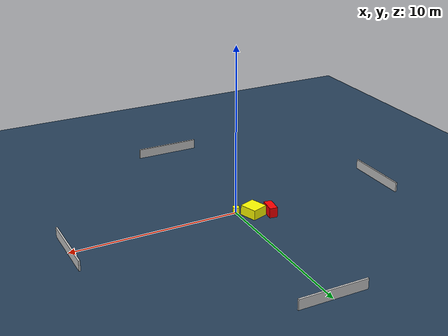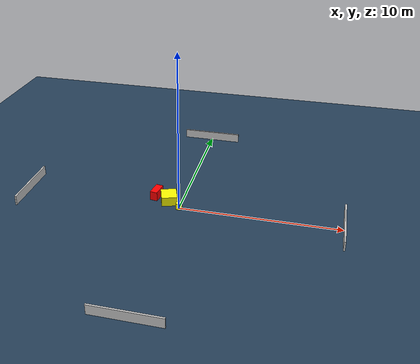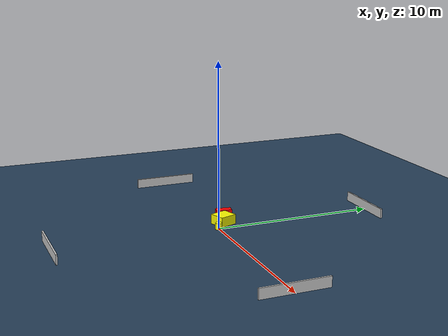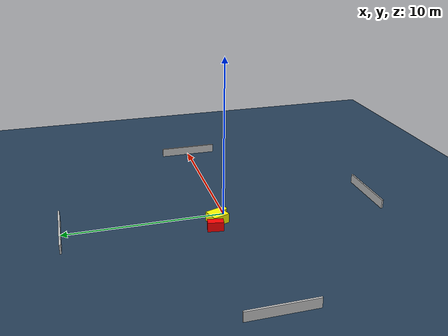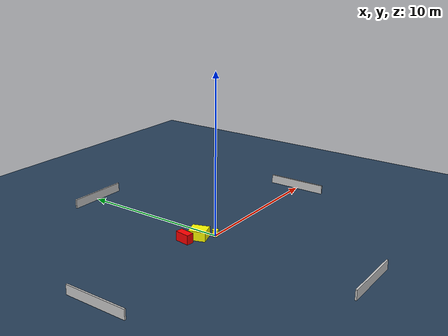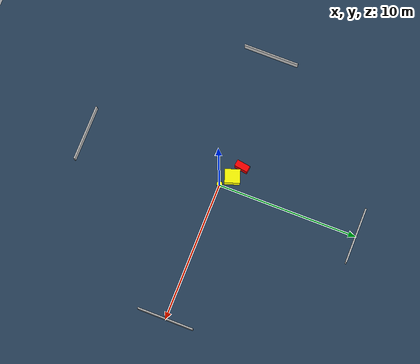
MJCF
<?xml version="1.0" ?>
<mujoco model="generated_environment">
  <option timestep="0.01" integrator="RK4" cone="elliptic"/>
  <default>
    <geom density="1"/>
  </default>
  <asset>
    <texture builtin="gradient" height="3072" name="skybox" rgb1="0.3 0.5 0.7" rgb2="0 0 0" type="skybox" width="512"/>
    <texture builtin="checker" height="300" name="groundplane" rgb1="0.2 0.3 0.4" rgb2="0.1 0.2 0.3" type="2d" width="300"/>
    <material name="groundplane" reflectance="0.2" texrepeat="5 5" texture="groundplane"/>
  </asset>
  <worldbody>
    <light dir="0 0 -1" directional="true" pos="0 0 1.5"/>
    <geom condim="3" friction="0.5 0.005 0.001" material="groundplane" name="floor" pos="0 0 0" size="0 0 0.05" type="plane"/>
    <body name="walls">
      <geom name="wall_1" condim="4" pos="-10.0 0.0 0.3" rgba="0.800000011920929 0.800000011920929 0.800000011920929 1.0" size="0.05 2.0 0.3" type="box"/>
      <geom name="wall_2" condim="4" pos="10.0 0.0 0.3" rgba="0.800000011920929 0.800000011920929 0.800000011920929 1.0" size="0.05 2.0 0.3" type="box"/>
      <geom name="wall_3" condim="4" pos="0.0 -10.0 0.3" rgba="0.800000011920929 0.800000011920929 0.800000011920929 1.0" size="2.0 0.05 0.3" type="box"/>
      <geom name="wall_4" condim="4" pos="0.0 10.0 0.3" rgba="0.800000011920929 0.800000011920929 0.800000011920929 1.0" size="2.0 0.05 0.3" type="box"/>
    </body>
    <body name="robot">
      <joint name="joint_x" type="slide" pos="0 0 0" axis="1 0 0"/>
      <joint name="joint_y" type="slide" pos="0 0 0" axis="0 1 0"/>
      <geom name="robot" type="cylinder" pos="0.0 0.0 0.2" size="0.2 0.2 0.0" mass="5.0" friction="1.0 0.005 0.0001" condim="4" rgba="1.0 1.0 0.0 1.0"/>
    </body>
    <body name="obstacle_1_movable">
      <geom name="obstacle_1_movable" condim="4" pos="-0.8092839434927898 0.634290969047084 0.3" euler="0 0 198.9844291556072" friction="0.0 0.005 0.001" rgba="1.0 1.0 0.0 1.0" size="0.492917693068285 0.5373664876021829 0.3" type="box" mass="0.1"/>
      <joint type="free"/>
    </body>
    <body name="obstacle_2_static">
      <geom name="obstacle_2_static" condim="4" pos="-1.7226455271453898 1.0087297535127653 0.3" euler="0 0 261.4413961767859" friction="0.0 0.005 0.001" rgba="1.0 0.0 0.0 1.0" size="0.4837424230957962 0.23748162981750676 0.3" type="box"/>
    </body>
  </worldbody>
  <actuator>
    <motor name="actuator_x" joint="joint_x" gear="1" ctrlrange="-1 1"/>
    <motor name="actuator_y" joint="joint_y" gear="1" ctrlrange="-1 1"/>
  </actuator>
</mujoco>
